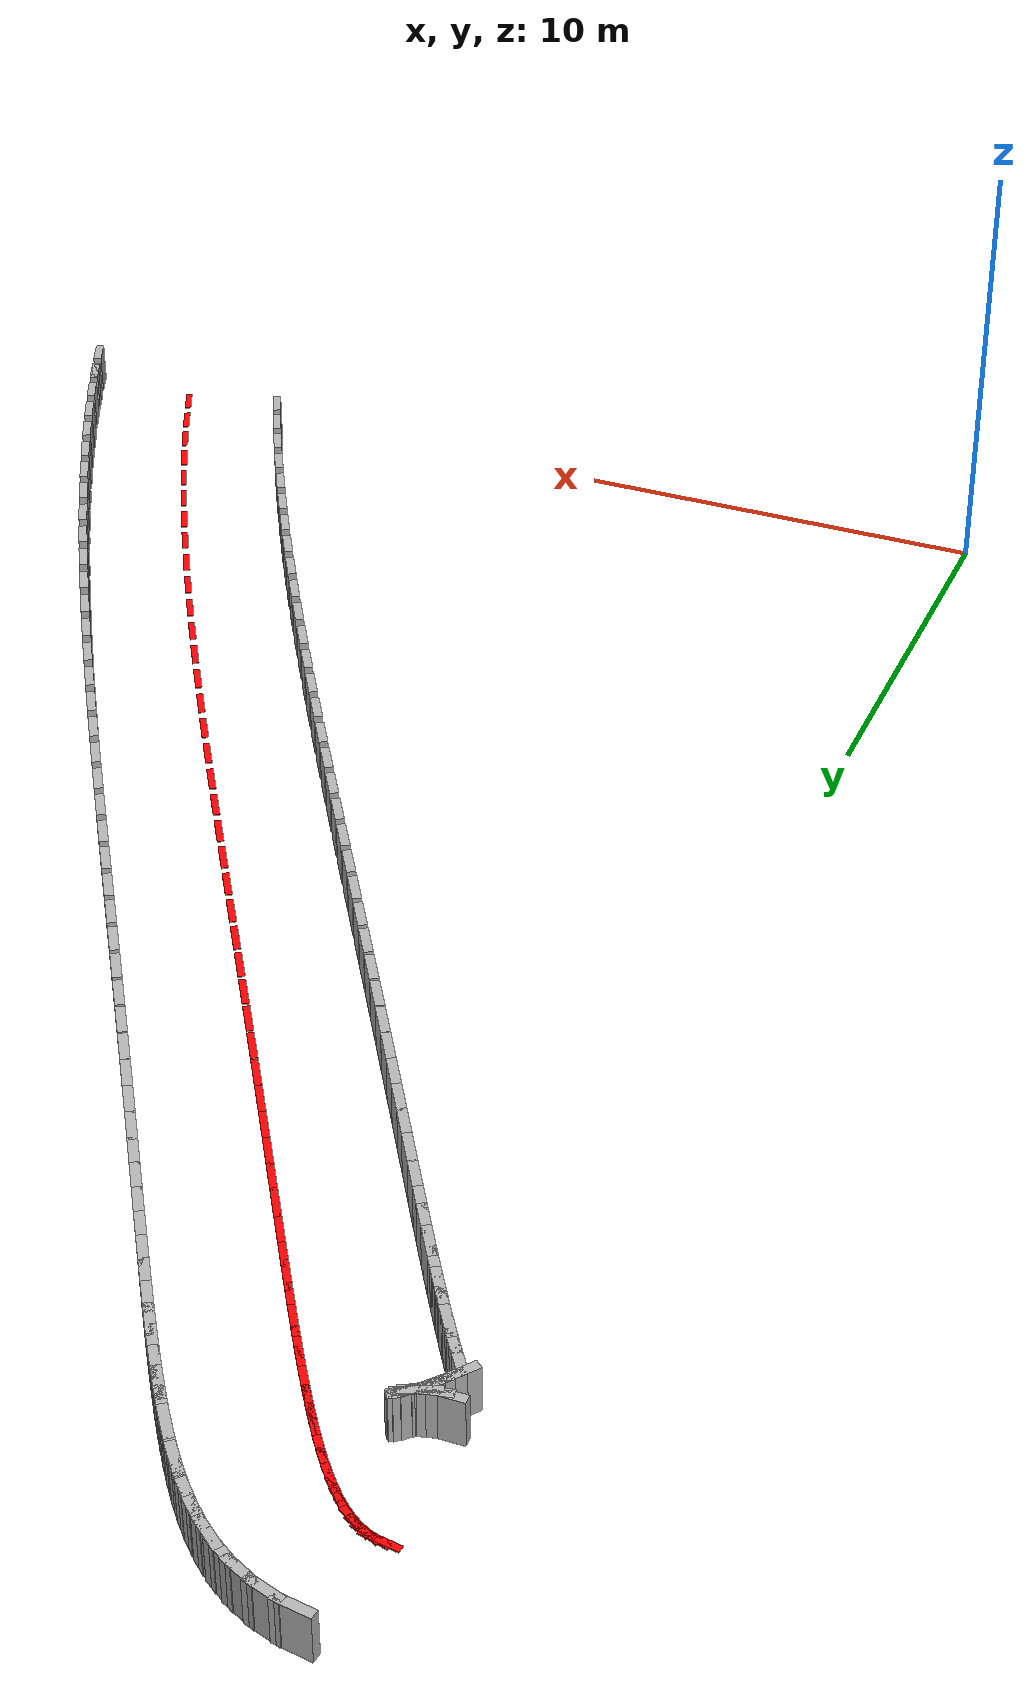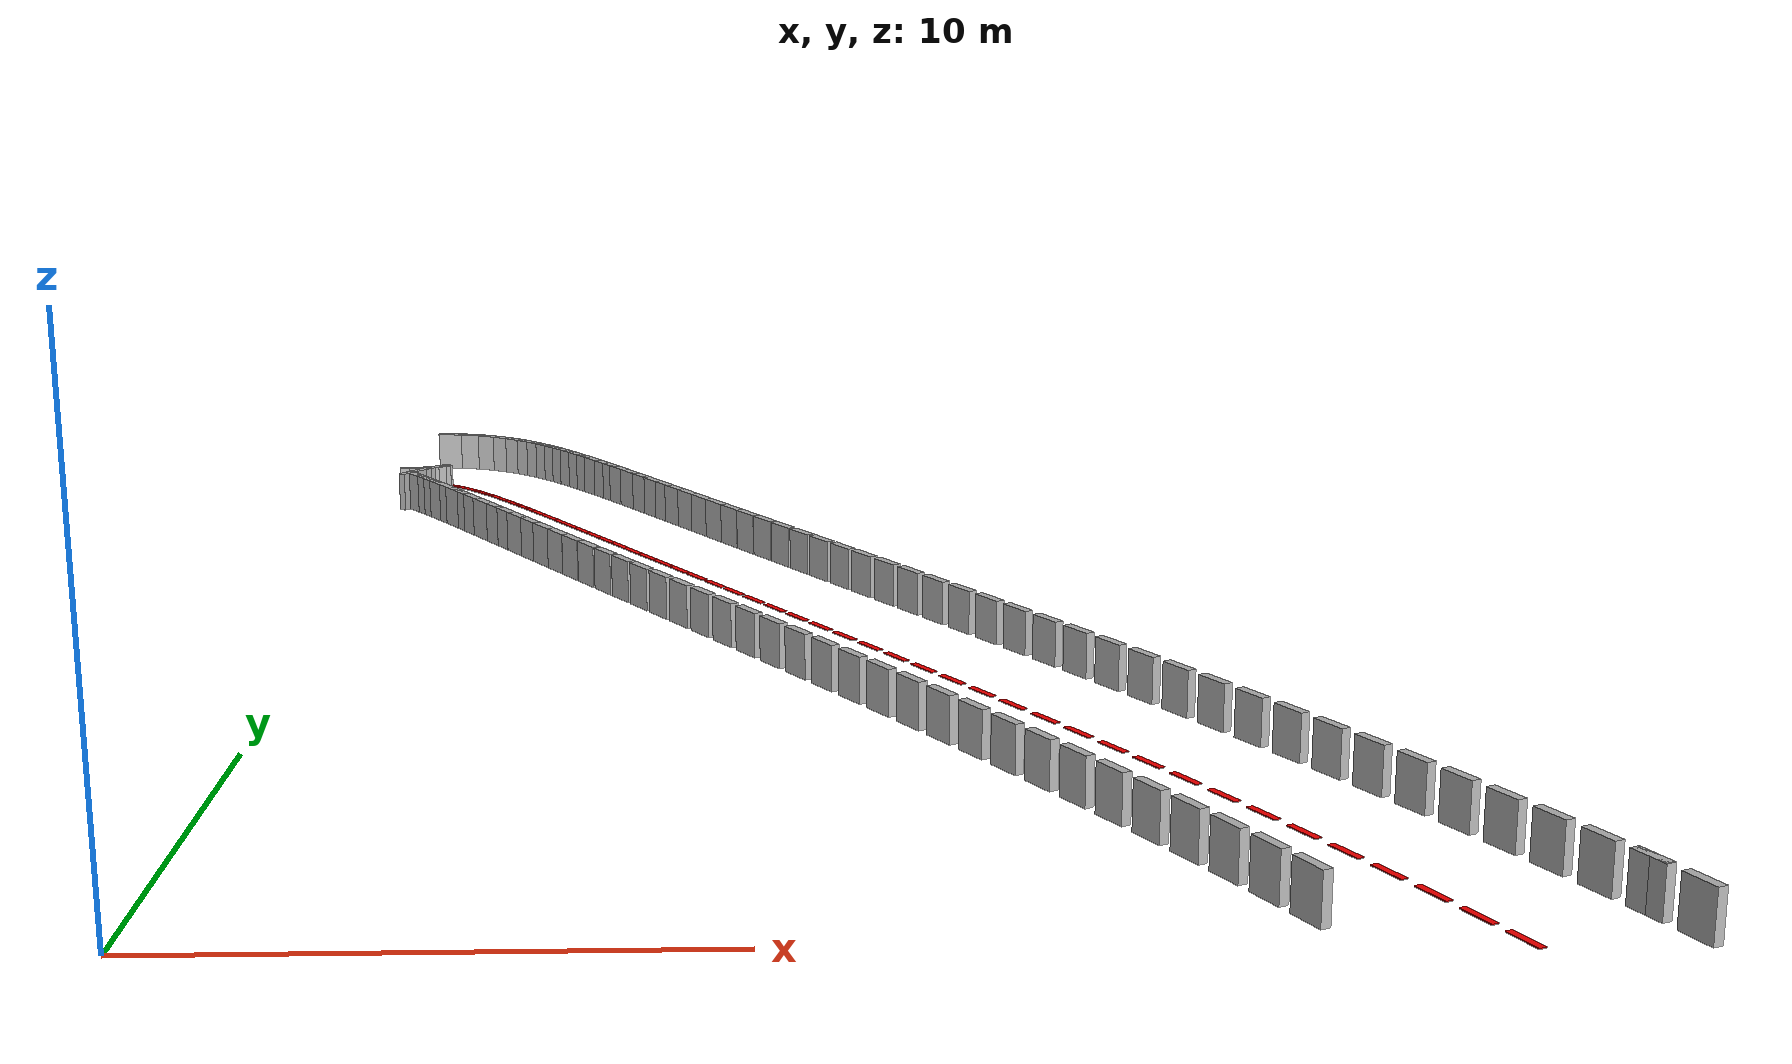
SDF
<sdf version="1.7">
 <model name="track_walls">
  <static>true</static>
  <link name="left_0">
   <pose>24.282 1.022 0.5 0 0 -1.150</pose>
   <collision name="c"><geometry><box><size>0.8 0.2 1.0</size></box></geometry></collision>
   <visual name="v"><geometry><box><size>0.8 0.2 1.0</size></box></geometry></visual>
  </link>
  <link name="left_1">
   <pose>24.739 -0.000 0.5 0 0 -1.158</pose>
   <collision name="c"><geometry><box><size>0.8 0.2 1.0</size></box></geometry></collision>
   <visual name="v"><geometry><box><size>0.8 0.2 1.0</size></box></geometry></visual>
  </link>
  <link name="right_154">
   <pose>0.048 31.980 0.5 0 0 0.918</pose>
   <collision name="c"><geometry><box><size>0.8 0.2 1.0</size></box></geometry></collision>
   <visual name="v"><geometry><box><size>0.8 0.2 1.0</size></box></geometry></visual>
  </link>
  <link name="right_155">
   <pose>0.222 32.201 0.5 0 0 0.890</pose>
   <collision name="c"><geometry><box><size>0.8 0.2 1.0</size></box></geometry></collision>
   <visual name="v"><geometry><box><size>0.8 0.2 1.0</size></box></geometry></visual>
  </link>
  <link name="right_156">
   <pose>0.373 32.382 0.5 0 0 0.854</pose>
   <collision name="c"><geometry><box><size>0.8 0.2 1.0</size></box></geometry></collision>
   <visual name="v"><geometry><box><size>0.8 0.2 1.0</size></box></geometry></visual>
  </link>
  <link name="right_157">
   <pose>0.498 32.520 0.5 0 0 0.809</pose>
   <collision name="c"><geometry><box><size>0.8 0.2 1.0</size></box></geometry></collision>
   <visual name="v"><geometry><box><size>0.8 0.2 1.0</size></box></geometry></visual>
  </link>
  <link name="right_158">
   <pose>0.592 32.613 0.5 0 0 0.752</pose>
   <collision name="c"><geometry><box><size>0.8 0.2 1.0</size></box></geometry></collision>
   <visual name="v"><geometry><box><size>0.8 0.2 1.0</size></box></geometry></visual>
  </link>
  <link name="right_159">
   <pose>0.647 32.662 0.5 0 0 0.681</pose>
   <collision name="c"><geometry><box><size>0.8 0.2 1.0</size></box></geometry></collision>
   <visual name="v"><geometry><box><size>0.8 0.2 1.0</size></box></geometry></visual>
  </link>
  <link name="right_160">
   <pose>0.653 32.667 0.5 0 0 0.593</pose>
   <collision name="c"><geometry><box><size>0.8 0.2 1.0</size></box></geometry></collision>
   <visual name="v"><geometry><box><size>0.8 0.2 1.0</size></box></geometry></visual>
  </link>
  <link name="right_161">
   <pose>0.600 32.636 0.5 0 0 0.485</pose>
   <collision name="c"><geometry><box><size>0.8 0.2 1.0</size></box></geometry></collision>
   <visual name="v"><geometry><box><size>0.8 0.2 1.0</size></box></geometry></visual>
  </link>
  <link name="right_162">
   <pose>0.479 32.583 0.5 0 0 0.355</pose>
   <collision name="c"><geometry><box><size>0.8 0.2 1.0</size></box></geometry></collision>
   <visual name="v"><geometry><box><size>0.8 0.2 1.0</size></box></geometry></visual>
  </link>
  <link name="right_163">
   <pose>0.294 32.530 0.5 0 0 0.205</pose>
   <collision name="c"><geometry><box><size>0.8 0.2 1.0</size></box></geometry></collision>
   <visual name="v"><geometry><box><size>0.8 0.2 1.0</size></box></geometry></visual>
  </link>
  <link name="right_164">
   <pose>0.061 32.501 0.5 0 0 0.042</pose>
   <collision name="c"><geometry><box><size>0.8 0.2 1.0</size></box></geometry></collision>
   <visual name="v"><geometry><box><size>0.8 0.2 1.0</size></box></geometry></visual>
  </link>
  <link name="left_165">
   <pose>0.440 37.473 0.5 0 0 -0.125</pose>
   <collision name="c"><geometry><box><size>0.8 0.2 1.0</size></box></geometry></collision>
   <visual name="v"><geometry><box><size>0.8 0.2 1.0</size></box></geometry></visual>
  </link>
  <link name="center_165">
   <pose>0.129 34.992 0.010 0 0 -0.125</pose>
   <visual name="v">
    <geometry><box><size>0.8 0.15 0.02</size></box></geometry>
    <material><ambient>1 0 0 1</ambient><diffuse>1 0 0 1</diffuse></material>
   </visual>
  </link>
  <link name="left_166">
   <pose>0.998 37.357 0.5 0 0 -0.282</pose>
   <collision name="c"><geometry><box><size>0.8 0.2 1.0</size></box></geometry></collision>
   <visual name="v"><geometry><box><size>0.8 0.2 1.0</size></box></geometry></visual>
  </link>
  <link name="center_166">
   <pose>0.302 34.956 0.010 0 0 -0.282</pose>
   <visual name="v">
    <geometry><box><size>0.8 0.15 0.02</size></box></geometry>
    <material><ambient>1 0 0 1</ambient><diffuse>1 0 0 1</diffuse></material>
   </visual>
  </link>
  <link name="left_167">
   <pose>1.502 37.171 0.5 0 0 -0.422</pose>
   <collision name="c"><geometry><box><size>0.8 0.2 1.0</size></box></geometry></collision>
   <visual name="v"><geometry><box><size>0.8 0.2 1.0</size></box></geometry></visual>
  </link>
  <link name="center_167">
   <pose>0.477 34.891 0.010 0 0 -0.422</pose>
   <visual name="v">
    <geometry><box><size>0.8 0.15 0.02</size></box></geometry>
    <material><ambient>1 0 0 1</ambient><diffuse>1 0 0 1</diffuse></material>
   </visual>
  </link>
  <link name="left_168">
   <pose>1.943 36.940 0.5 0 0 -0.542</pose>
   <collision name="c"><geometry><box><size>0.8 0.2 1.0</size></box></geometry></collision>
   <visual name="v"><geometry><box><size>0.8 0.2 1.0</size></box></geometry></visual>
  </link>
  <link name="center_168">
   <pose>0.654 34.798 0.010 0 0 -0.542</pose>
   <visual name="v">
    <geometry><box><size>0.8 0.15 0.02</size></box></geometry>
    <material><ambient>1 0 0 1</ambient><diffuse>1 0 0 1</diffuse></material>
   </visual>
  </link>
  <link name="left_169">
   <pose>2.327 36.681 0.5 0 0 -0.640</pose>
   <collision name="c"><geometry><box><size>0.8 0.2 1.0</size></box></geometry></collision>
   <visual name="v"><geometry><box><size>0.8 0.2 1.0</size></box></geometry></visual>
  </link>
  <link name="center_169">
   <pose>0.835 34.675 0.010 0 0 -0.640</pose>
   <visual name="v">
    <geometry><box><size>0.8 0.15 0.02</size></box></geometry>
    <material><ambient>1 0 0 1</ambient><diffuse>1 0 0 1</diffuse></material>
   </visual>
  </link>
  <link name="left_170">
   <pose>2.667 36.406 0.5 0 0 -0.719</pose>
   <collision name="c"><geometry><box><size>0.8 0.2 1.0</size></box></geometry></collision>
   <visual name="v"><geometry><box><size>0.8 0.2 1.0</size></box></geometry></visual>
  </link>
  <link name="center_170">
   <pose>1.021 34.525 0.010 0 0 -0.719</pose>
   <visual name="v">
    <geometry><box><size>0.8 0.15 0.02</size></box></geometry>
    <material><ambient>1 0 0 1</ambient><diffuse>1 0 0 1</diffuse></material>
   </visual>
  </link>
  <link name="left_171">
   <pose>2.974 36.119 0.5 0 0 -0.782</pose>
   <collision name="c"><geometry><box><size>0.8 0.2 1.0</size></box></geometry></collision>
   <visual name="v"><geometry><box><size>0.8 0.2 1.0</size></box></geometry></visual>
  </link>
  <link name="center_171">
   <pose>1.212 34.346 0.010 0 0 -0.782</pose>
   <visual name="v">
    <geometry><box><size>0.8 0.15 0.02</size></box></geometry>
    <material><ambient>1 0 0 1</ambient><diffuse>1 0 0 1</diffuse></material>
   </visual>
  </link>
  <link name="left_172">
   <pose>3.259 35.821 0.5 0 0 -0.833</pose>
   <collision name="c"><geometry><box><size>0.8 0.2 1.0</size></box></geometry></collision>
   <visual name="v"><geometry><box><size>0.8 0.2 1.0</size></box></geometry></visual>
  </link>
  <link name="center_172">
   <pose>1.410 34.138 0.010 0 0 -0.833</pose>
   <visual name="v">
    <geometry><box><size>0.8 0.15 0.02</size></box></geometry>
    <material><ambient>1 0 0 1</ambient><diffuse>1 0 0 1</diffuse></material>
   </visual>
  </link>
  <link name="left_173">
   <pose>3.531 35.509 0.5 0 0 -0.873</pose>
   <collision name="c"><geometry><box><size>0.8 0.2 1.0</size></box></geometry></collision>
   <visual name="v"><geometry><box><size>0.8 0.2 1.0</size></box></geometry></visual>
  </link>
  <link name="center_173">
   <pose>1.615 33.903 0.010 0 0 -0.873</pose>
   <visual name="v">
    <geometry><box><size>0.8 0.15 0.02</size></box></geometry>
    <material><ambient>1 0 0 1</ambient><diffuse>1 0 0 1</diffuse></material>
   </visual>
  </link>
  <link name="left_174">
   <pose>3.794 35.184 0.5 0 0 -0.905</pose>
   <collision name="c"><geometry><box><size>0.8 0.2 1.0</size></box></geometry></collision>
   <visual name="v"><geometry><box><size>0.8 0.2 1.0</size></box></geometry></visual>
  </link>
  <link name="center_174">
   <pose>1.828 33.640 0.010 0 0 -0.905</pose>
   <visual name="v">
    <geometry><box><size>0.8 0.15 0.02</size></box></geometry>
    <material><ambient>1 0 0 1</ambient><diffuse>1 0 0 1</diffuse></material>
   </visual>
  </link>
  <link name="left_175">
   <pose>4.055 34.842 0.5 0 0 -0.930</pose>
   <collision name="c"><geometry><box><size>0.8 0.2 1.0</size></box></geometry></collision>
   <visual name="v"><geometry><box><size>0.8 0.2 1.0</size></box></geometry></visual>
  </link>
  <link name="center_175">
   <pose>2.051 33.348 0.010 0 0 -0.930</pose>
   <visual name="v">
    <geometry><box><size>0.8 0.15 0.02</size></box></geometry>
    <material><ambient>1 0 0 1</ambient><diffuse>1 0 0 1</diffuse></material>
   </visual>
  </link>
  <link name="left_176">
   <pose>4.317 34.483 0.5 0 0 -0.951</pose>
   <collision name="c"><geometry><box><size>0.8 0.2 1.0</size></box></geometry></collision>
   <visual name="v"><geometry><box><size>0.8 0.2 1.0</size></box></geometry></visual>
  </link>
  <link name="right_176">
   <pose>0.248 31.577 0.5 0 0 -0.951</pose>
   <collision name="c"><geometry><box><size>0.8 0.2 1.0</size></box></geometry></collision>
   <visual name="v"><geometry><box><size>0.8 0.2 1.0</size></box></geometry></visual>
  </link>
  <link name="center_176">
   <pose>2.282 33.030 0.010 0 0 -0.951</pose>
   <visual name="v">
    <geometry><box><size>0.8 0.15 0.02</size></box></geometry>
    <material><ambient>1 0 0 1</ambient><diffuse>1 0 0 1</diffuse></material>
   </visual>
  </link>
  <link name="left_177">
   <pose>4.582 34.105 0.5 0 0 -0.967</pose>
   <collision name="c"><geometry><box><size>0.8 0.2 1.0</size></box></geometry></collision>
   <visual name="v"><geometry><box><size>0.8 0.2 1.0</size></box></geometry></visual>
  </link>
  <link name="right_177">
   <pose>0.468 31.264 0.5 0 0 -0.967</pose>
   <collision name="c"><geometry><box><size>0.8 0.2 1.0</size></box></geometry></collision>
   <visual name="v"><geometry><box><size>0.8 0.2 1.0</size></box></geometry></visual>
  </link>
  <link name="center_177">
   <pose>2.525 32.684 0.010 0 0 -0.967</pose>
   <visual name="v">
    <geometry><box><size>0.8 0.15 0.02</size></box></geometry>
    <material><ambient>1 0 0 1</ambient><diffuse>1 0 0 1</diffuse></material>
   </visual>
  </link>
  <link name="left_178">
   <pose>4.853 33.706 0.5 0 0 -0.979</pose>
   <collision name="c"><geometry><box><size>0.8 0.2 1.0</size></box></geometry></collision>
   <visual name="v"><geometry><box><size>0.8 0.2 1.0</size></box></geometry></visual>
  </link>
  <link name="right_178">
   <pose>0.704 30.917 0.5 0 0 -0.979</pose>
   <collision name="c"><geometry><box><size>0.8 0.2 1.0</size></box></geometry></collision>
   <visual name="v"><geometry><box><size>0.8 0.2 1.0</size></box></geometry></visual>
  </link>
  <link name="center_178">
   <pose>2.778 32.312 0.010 0 0 -0.979</pose>
   <visual name="v">
    <geometry><box><size>0.8 0.15 0.02</size></box></geometry>
    <material><ambient>1 0 0 1</ambient><diffuse>1 0 0 1</diffuse></material>
   </visual>
  </link>
  <link name="left_179">
   <pose>5.132 33.287 0.5 0 0 -0.989</pose>
   <collision name="c"><geometry><box><size>0.8 0.2 1.0</size></box></geometry></collision>
   <visual name="v"><geometry><box><size>0.8 0.2 1.0</size></box></geometry></visual>
  </link>
  <link name="right_179">
   <pose>0.955 30.538 0.5 0 0 -0.989</pose>
   <collision name="c"><geometry><box><size>0.8 0.2 1.0</size></box></geometry></collision>
   <visual name="v"><geometry><box><size>0.8 0.2 1.0</size></box></geometry></visual>
  </link>
  <link name="center_179">
   <pose>3.044 31.913 0.010 0 0 -0.989</pose>
   <visual name="v">
    <geometry><box><size>0.8 0.15 0.02</size></box></geometry>
    <material><ambient>1 0 0 1</ambient><diffuse>1 0 0 1</diffuse></material>
   </visual>
  </link>
  <link name="left_180">
   <pose>5.420 32.846 0.5 0 0 -0.996</pose>
   <collision name="c"><geometry><box><size>0.8 0.2 1.0</size></box></geometry></collision>
   <visual name="v"><geometry><box><size>0.8 0.2 1.0</size></box></geometry></visual>
  </link>
  <link name="right_180">
   <pose>1.223 30.128 0.5 0 0 -0.996</pose>
   <collision name="c"><geometry><box><size>0.8 0.2 1.0</size></box></geometry></collision>
   <visual name="v"><geometry><box><size>0.8 0.2 1.0</size></box></geometry></visual>
  </link>
  <link name="center_180">
   <pose>3.321 31.487 0.010 0 0 -0.996</pose>
   <visual name="v">
    <geometry><box><size>0.8 0.15 0.02</size></box></geometry>
    <material><ambient>1 0 0 1</ambient><diffuse>1 0 0 1</diffuse></material>
   </visual>
  </link>
  <link name="left_181">
   <pose>5.717 32.383 0.5 0 0 -1.002</pose>
   <collision name="c"><geometry><box><size>0.8 0.2 1.0</size></box></geometry></collision>
   <visual name="v"><geometry><box><size>0.8 0.2 1.0</size></box></geometry></visual>
  </link>
  <link name="right_181">
   <pose>1.505 29.689 0.5 0 0 -1.002</pose>
   <collision name="c"><geometry><box><size>0.8 0.2 1.0</size></box></geometry></collision>
   <visual name="v"><geometry><box><size>0.8 0.2 1.0</size></box></geometry></visual>
  </link>
  <link name="center_181">
   <pose>3.611 31.036 0.010 0 0 -1.002</pose>
   <visual name="v">
    <geometry><box><size>0.8 0.15 0.02</size></box></geometry>
    <material><ambient>1 0 0 1</ambient><diffuse>1 0 0 1</diffuse></material>
   </visual>
  </link>
  <link name="left_182">
   <pose>6.026 31.897 0.5 0 0 -1.006</pose>
   <collision name="c"><geometry><box><size>0.8 0.2 1.0</size></box></geometry></collision>
   <visual name="v"><geometry><box><size>0.8 0.2 1.0</size></box></geometry></visual>
  </link>
  <link name="right_182">
   <pose>1.804 29.220 0.5 0 0 -1.006</pose>
   <collision name="c"><geometry><box><size>0.8 0.2 1.0</size></box></geometry></collision>
   <visual name="v"><geometry><box><size>0.8 0.2 1.0</size></box></geometry></visual>
  </link>
  <link name="center_182">
   <pose>3.915 30.559 0.010 0 0 -1.006</pose>
   <visual name="v">
    <geometry><box><size>0.8 0.15 0.02</size></box></geometry>
    <material><ambient>1 0 0 1</ambient><diffuse>1 0 0 1</diffuse></material>
   </visual>
  </link>
  <link name="left_183">
   <pose>6.347 31.389 0.5 0 0 -1.009</pose>
   <collision name="c"><geometry><box><size>0.8 0.2 1.0</size></box></geometry></collision>
   <visual name="v"><geometry><box><size>0.8 0.2 1.0</size></box></geometry></visual>
  </link>
  <link name="right_183">
   <pose>2.117 28.724 0.5 0 0 -1.009</pose>
   <collision name="c"><geometry><box><size>0.8 0.2 1.0</size></box></geometry></collision>
   <visual name="v"><geometry><box><size>0.8 0.2 1.0</size></box></geometry></visual>
  </link>
  <link name="center_183">
   <pose>4.232 30.057 0.010 0 0 -1.009</pose>
   <visual name="v">
    <geometry><box><size>0.8 0.15 0.02</size></box></geometry>
    <material><ambient>1 0 0 1</ambient><diffuse>1 0 0 1</diffuse></material>
   </visual>
  </link>
  <link name="left_184">
   <pose>6.681 30.858 0.5 0 0 -1.011</pose>
   <collision name="c"><geometry><box><size>0.8 0.2 1.0</size></box></geometry></collision>
   <visual name="v"><geometry><box><size>0.8 0.2 1.0</size></box></geometry></visual>
  </link>
  <link name="right_184">
   <pose>2.445 28.201 0.5 0 0 -1.011</pose>
   <collision name="c"><geometry><box><size>0.8 0.2 1.0</size></box></geometry></collision>
   <visual name="v"><geometry><box><size>0.8 0.2 1.0</size></box></geometry></visual>
  </link>
  <link name="center_184">
   <pose>4.563 29.530 0.010 0 0 -1.011</pose>
   <visual name="v">
    <geometry><box><size>0.8 0.15 0.02</size></box></geometry>
    <material><ambient>1 0 0 1</ambient><diffuse>1 0 0 1</diffuse></material>
   </visual>
  </link>
  <link name="left_185">
   <pose>7.028 30.305 0.5 0 0 -1.012</pose>
   <collision name="c"><geometry><box><size>0.8 0.2 1.0</size></box></geometry></collision>
   <visual name="v"><geometry><box><size>0.8 0.2 1.0</size></box></geometry></visual>
  </link>
  <link name="right_185">
   <pose>2.789 27.653 0.5 0 0 -1.012</pose>
   <collision name="c"><geometry><box><size>0.8 0.2 1.0</size></box></geometry></collision>
   <visual name="v"><geometry><box><size>0.8 0.2 1.0</size></box></geometry></visual>
  </link>
  <link name="center_185">
   <pose>4.908 28.979 0.010 0 0 -1.012</pose>
   <visual name="v">
    <geometry><box><size>0.8 0.15 0.02</size></box></geometry>
    <material><ambient>1 0 0 1</ambient><diffuse>1 0 0 1</diffuse></material>
   </visual>
  </link>
  <link name="left_186">
   <pose>7.388 29.729 0.5 0 0 -1.012</pose>
   <collision name="c"><geometry><box><size>0.8 0.2 1.0</size></box></geometry></collision>
   <visual name="v"><geometry><box><size>0.8 0.2 1.0</size></box></geometry></visual>
  </link>
  <link name="right_186">
   <pose>3.148 27.079 0.5 0 0 -1.012</pose>
   <collision name="c"><geometry><box><size>0.8 0.2 1.0</size></box></geometry></collision>
   <visual name="v"><geometry><box><size>0.8 0.2 1.0</size></box></geometry></visual>
  </link>
  <link name="center_186">
   <pose>5.268 28.404 0.010 0 0 -1.012</pose>
   <visual name="v">
    <geometry><box><size>0.8 0.15 0.02</size></box></geometry>
    <material><ambient>1 0 0 1</ambient><diffuse>1 0 0 1</diffuse></material>
   </visual>
  </link>
  <link name="left_187">
   <pose>7.762 29.130 0.5 0 0 -1.012</pose>
   <collision name="c"><geometry><box><size>0.8 0.2 1.0</size></box></geometry></collision>
   <visual name="v"><geometry><box><size>0.8 0.2 1.0</size></box></geometry></visual>
  </link>
  <link name="right_187">
   <pose>3.521 26.481 0.5 0 0 -1.012</pose>
   <collision name="c"><geometry><box><size>0.8 0.2 1.0</size></box></geometry></collision>
   <visual name="v"><geometry><box><size>0.8 0.2 1.0</size></box></geometry></visual>
  </link>
  <link name="center_187">
   <pose>5.642 27.806 0.010 0 0 -1.012</pose>
   <visual name="v">
    <geometry><box><size>0.8 0.15 0.02</size></box></geometry>
    <material><ambient>1 0 0 1</ambient><diffuse>1 0 0 1</diffuse></material>
   </visual>
  </link>
  <link name="left_188">
   <pose>8.149 28.510 0.5 0 0 -1.012</pose>
   <collision name="c"><geometry><box><size>0.8 0.2 1.0</size></box></geometry></collision>
   <visual name="v"><geometry><box><size>0.8 0.2 1.0</size></box></geometry></visual>
  </link>
  <link name="right_188">
   <pose>3.910 25.859 0.5 0 0 -1.012</pose>
   <collision name="c"><geometry><box><size>0.8 0.2 1.0</size></box></geometry></collision>
   <visual name="v"><geometry><box><size>0.8 0.2 1.0</size></box></geometry></visual>
  </link>
  <link name="center_188">
   <pose>6.030 27.184 0.010 0 0 -1.012</pose>
   <visual name="v">
    <geometry><box><size>0.8 0.15 0.02</size></box></geometry>
    <material><ambient>1 0 0 1</ambient><diffuse>1 0 0 1</diffuse></material>
   </visual>
  </link>
  <link name="left_189">
   <pose>8.551 27.867 0.5 0 0 -1.011</pose>
   <collision name="c"><geometry><box><size>0.8 0.2 1.0</size></box></geometry></collision>
   <visual name="v"><geometry><box><size>0.8 0.2 1.0</size></box></geometry></visual>
  </link>
  <link name="right_189">
   <pose>4.313 25.214 0.5 0 0 -1.011</pose>
   <collision name="c"><geometry><box><size>0.8 0.2 1.0</size></box></geometry></collision>
   <visual name="v"><geometry><box><size>0.8 0.2 1.0</size></box></geometry></visual>
  </link>
  <link name="center_189">
   <pose>6.432 26.541 0.010 0 0 -1.011</pose>
   <visual name="v">
    <geometry><box><size>0.8 0.15 0.02</size></box></geometry>
    <material><ambient>1 0 0 1</ambient><diffuse>1 0 0 1</diffuse></material>
   </visual>
  </link>
  <link name="left_190">
   <pose>8.967 27.203 0.5 0 0 -1.011</pose>
   <collision name="c"><geometry><box><size>0.8 0.2 1.0</size></box></geometry></collision>
   <visual name="v"><geometry><box><size>0.8 0.2 1.0</size></box></geometry></visual>
  </link>
  <link name="right_190">
   <pose>4.731 24.547 0.5 0 0 -1.011</pose>
   <collision name="c"><geometry><box><size>0.8 0.2 1.0</size></box></geometry></collision>
   <visual name="v"><geometry><box><size>0.8 0.2 1.0</size></box></geometry></visual>
  </link>
  <link name="center_190">
   <pose>6.849 25.875 0.010 0 0 -1.011</pose>
   <visual name="v">
    <geometry><box><size>0.8 0.15 0.02</size></box></geometry>
    <material><ambient>1 0 0 1</ambient><diffuse>1 0 0 1</diffuse></material>
   </visual>
  </link>
  <link name="left_191">
   <pose>9.397 26.518 0.5 0 0 -1.010</pose>
   <collision name="c"><geometry><box><size>0.8 0.2 1.0</size></box></geometry></collision>
   <visual name="v"><geometry><box><size>0.8 0.2 1.0</size></box></geometry></visual>
  </link>
  <link name="right_191">
   <pose>5.163 23.859 0.5 0 0 -1.010</pose>
   <collision name="c"><geometry><box><size>0.8 0.2 1.0</size></box></geometry></collision>
   <visual name="v"><geometry><box><size>0.8 0.2 1.0</size></box></geometry></visual>
  </link>
  <link name="center_191">
   <pose>7.280 25.189 0.010 0 0 -1.010</pose>
   <visual name="v">
    <geometry><box><size>0.8 0.15 0.02</size></box></geometry>
    <material><ambient>1 0 0 1</ambient><diffuse>1 0 0 1</diffuse></material>
   </visual>
  </link>
  <link name="left_192">
   <pose>9.841 25.812 0.5 0 0 -1.009</pose>
   <collision name="c"><geometry><box><size>0.8 0.2 1.0</size></box></geometry></collision>
   <visual name="v"><geometry><box><size>0.8 0.2 1.0</size></box></geometry></visual>
  </link>
  <link name="right_192">
   <pose>5.608 23.150 0.5 0 0 -1.009</pose>
   <collision name="c"><geometry><box><size>0.8 0.2 1.0</size></box></geometry></collision>
   <visual name="v"><geometry><box><size>0.8 0.2 1.0</size></box></geometry></visual>
  </link>
  <link name="center_192">
   <pose>7.725 24.481 0.010 0 0 -1.009</pose>
   <visual name="v">
    <geometry><box><size>0.8 0.15 0.02</size></box></geometry>
    <material><ambient>1 0 0 1</ambient><diffuse>1 0 0 1</diffuse></material>
   </visual>
  </link>
  <link name="left_193">
   <pose>10.298 25.086 0.5 0 0 -1.009</pose>
   <collision name="c"><geometry><box><size>0.8 0.2 1.0</size></box></geometry></collision>
   <visual name="v"><geometry><box><size>0.8 0.2 1.0</size></box></geometry></visual>
  </link>
  <link name="right_193">
   <pose>6.067 22.421 0.5 0 0 -1.009</pose>
   <collision name="c"><geometry><box><size>0.8 0.2 1.0</size></box></geometry></collision>
   <visual name="v"><geometry><box><size>0.8 0.2 1.0</size></box></geometry></visual>
  </link>
  <link name="center_193">
   <pose>8.183 23.753 0.010 0 0 -1.009</pose>
   <visual name="v">
    <geometry><box><size>0.8 0.15 0.02</size></box></geometry>
    <material><ambient>1 0 0 1</ambient><diffuse>1 0 0 1</diffuse></material>
   </visual>
  </link>
  <link name="left_194">
   <pose>10.768 24.340 0.5 0 0 -1.008</pose>
   <collision name="c"><geometry><box><size>0.8 0.2 1.0</size></box></geometry></collision>
   <visual name="v"><geometry><box><size>0.8 0.2 1.0</size></box></geometry></visual>
  </link>
  <link name="right_194">
   <pose>6.539 21.673 0.5 0 0 -1.008</pose>
   <collision name="c"><geometry><box><size>0.8 0.2 1.0</size></box></geometry></collision>
   <visual name="v"><geometry><box><size>0.8 0.2 1.0</size></box></geometry></visual>
  </link>
  <link name="center_194">
   <pose>8.654 23.006 0.010 0 0 -1.008</pose>
   <visual name="v">
    <geometry><box><size>0.8 0.15 0.02</size></box></geometry>
    <material><ambient>1 0 0 1</ambient><diffuse>1 0 0 1</diffuse></material>
   </visual>
  </link>
  <link name="left_195">
   <pose>11.251 23.574 0.5 0 0 -1.008</pose>
   <collision name="c"><geometry><box><size>0.8 0.2 1.0</size></box></geometry></collision>
   <visual name="v"><geometry><box><size>0.8 0.2 1.0</size></box></geometry></visual>
  </link>
  <link name="right_195">
   <pose>7.023 20.906 0.5 0 0 -1.008</pose>
   <collision name="c"><geometry><box><size>0.8 0.2 1.0</size></box></geometry></collision>
   <visual name="v"><geometry><box><size>0.8 0.2 1.0</size></box></geometry></visual>
  </link>
  <link name="center_195">
   <pose>9.137 22.240 0.010 0 0 -1.008</pose>
   <visual name="v">
    <geometry><box><size>0.8 0.15 0.02</size></box></geometry>
    <material><ambient>1 0 0 1</ambient><diffuse>1 0 0 1</diffuse></material>
   </visual>
  </link>
  <link name="left_196">
   <pose>11.746 22.790 0.5 0 0 -1.008</pose>
   <collision name="c"><geometry><box><size>0.8 0.2 1.0</size></box></geometry></collision>
   <visual name="v"><geometry><box><size>0.8 0.2 1.0</size></box></geometry></visual>
  </link>
  <link name="right_196">
   <pose>7.518 20.121 0.5 0 0 -1.008</pose>
   <collision name="c"><geometry><box><size>0.8 0.2 1.0</size></box></geometry></collision>
   <visual name="v"><geometry><box><size>0.8 0.2 1.0</size></box></geometry></visual>
  </link>
  <link name="center_196">
   <pose>9.632 21.456 0.010 0 0 -1.008</pose>
   <visual name="v">
    <geometry><box><size>0.8 0.15 0.02</size></box></geometry>
    <material><ambient>1 0 0 1</ambient><diffuse>1 0 0 1</diffuse></material>
   </visual>
  </link>
  <link name="left_197">
   <pose>12.253 21.988 0.5 0 0 -1.008</pose>
   <collision name="c"><geometry><box><size>0.8 0.2 1.0</size></box></geometry></collision>
   <visual name="v"><geometry><box><size>0.8 0.2 1.0</size></box></geometry></visual>
  </link>
  <link name="right_197">
   <pose>8.025 19.319 0.5 0 0 -1.008</pose>
   <collision name="c"><geometry><box><size>0.8 0.2 1.0</size></box></geometry></collision>
   <visual name="v"><geometry><box><size>0.8 0.2 1.0</size></box></geometry></visual>
  </link>
  <link name="center_197">
   <pose>10.139 20.654 0.010 0 0 -1.008</pose>
   <visual name="v">
    <geometry><box><size>0.8 0.15 0.02</size></box></geometry>
    <material><ambient>1 0 0 1</ambient><diffuse>1 0 0 1</diffuse></material>
   </visual>
  </link>
  <link name="left_198">
   <pose>12.770 21.168 0.5 0 0 -1.008</pose>
   <collision name="c"><geometry><box><size>0.8 0.2 1.0</size></box></geometry></collision>
   <visual name="v"><geometry><box><size>0.8 0.2 1.0</size></box></geometry></visual>
  </link>
  <link name="right_198">
   <pose>8.541 18.501 0.5 0 0 -1.008</pose>
   <collision name="c"><geometry><box><size>0.8 0.2 1.0</size></box></geometry></collision>
   <visual name="v"><geometry><box><size>0.8 0.2 1.0</size></box></geometry></visual>
  </link>
  <link name="center_198">
   <pose>10.656 19.835 0.010 0 0 -1.008</pose>
   <visual name="v">
    <geometry><box><size>0.8 0.15 0.02</size></box></geometry>
    <material><ambient>1 0 0 1</ambient><diffuse>1 0 0 1</diffuse></material>
   </visual>
  </link>
  <link name="left_199">
   <pose>13.298 20.331 0.5 0 0 -1.009</pose>
   <collision name="c"><geometry><box><size>0.8 0.2 1.0</size></box></geometry></collision>
   <visual name="v"><geometry><box><size>0.8 0.2 1.0</size></box></geometry></visual>
  </link>
  <link name="right_199">
   <pose>9.067 17.667 0.5 0 0 -1.009</pose>
   <collision name="c"><geometry><box><size>0.8 0.2 1.0</size></box></geometry></collision>
   <visual name="v"><geometry><box><size>0.8 0.2 1.0</size></box></geometry></visual>
  </link>
  <link name="center_199">
   <pose>11.182 18.999 0.010 0 0 -1.009</pose>
   <visual name="v">
    <geometry><box><size>0.8 0.15 0.02</size></box></geometry>
    <material><ambient>1 0 0 1</ambient><diffuse>1 0 0 1</diffuse></material>
   </visual>
  </link>
  <link name="left_200">
   <pose>13.835 19.478 0.5 0 0 -1.010</pose>
   <collision name="c"><geometry><box><size>0.8 0.2 1.0</size></box></geometry></collision>
   <visual name="v"><geometry><box><size>0.8 0.2 1.0</size></box></geometry></visual>
  </link>
  <link name="right_200">
   <pose>9.601 16.818 0.5 0 0 -1.010</pose>
   <collision name="c"><geometry><box><size>0.8 0.2 1.0</size></box></geometry></collision>
   <visual name="v"><geometry><box><size>0.8 0.2 1.0</size></box></geometry></visual>
  </link>
  <link name="center_200">
   <pose>11.718 18.148 0.010 0 0 -1.010</pose>
   <visual name="v">
    <geometry><box><size>0.8 0.15 0.02</size></box></geometry>
    <material><ambient>1 0 0 1</ambient><diffuse>1 0 0 1</diffuse></material>
   </visual>
  </link>
  <link name="left_201">
   <pose>14.380 18.609 0.5 0 0 -1.011</pose>
   <collision name="c"><geometry><box><size>0.8 0.2 1.0</size></box></geometry></collision>
   <visual name="v"><geometry><box><size>0.8 0.2 1.0</size></box></geometry></visual>
  </link>
  <link name="right_201">
   <pose>10.142 15.955 0.5 0 0 -1.011</pose>
   <collision name="c"><geometry><box><size>0.8 0.2 1.0</size></box></geometry></collision>
   <visual name="v"><geometry><box><size>0.8 0.2 1.0</size></box></geometry></visual>
  </link>
  <link name="center_201">
   <pose>12.261 17.282 0.010 0 0 -1.011</pose>
   <visual name="v">
    <geometry><box><size>0.8 0.15 0.02</size></box></geometry>
    <material><ambient>1 0 0 1</ambient><diffuse>1 0 0 1</diffuse></material>
   </visual>
  </link>
  <link name="left_202">
   <pose>14.932 17.725 0.5 0 0 -1.013</pose>
   <collision name="c"><geometry><box><size>0.8 0.2 1.0</size></box></geometry></collision>
   <visual name="v"><geometry><box><size>0.8 0.2 1.0</size></box></geometry></visual>
  </link>
  <link name="right_202">
   <pose>10.690 15.079 0.5 0 0 -1.013</pose>
   <collision name="c"><geometry><box><size>0.8 0.2 1.0</size></box></geometry></collision>
   <visual name="v"><geometry><box><size>0.8 0.2 1.0</size></box></geometry></visual>
  </link>
  <link name="center_202">
   <pose>12.811 16.402 0.010 0 0 -1.013</pose>
   <visual name="v">
    <geometry><box><size>0.8 0.15 0.02</size></box></geometry>
    <material><ambient>1 0 0 1</ambient><diffuse>1 0 0 1</diffuse></material>
   </visual>
  </link>
  <link name="left_203">
   <pose>15.491 16.826 0.5 0 0 -1.016</pose>
   <collision name="c"><geometry><box><size>0.8 0.2 1.0</size></box></geometry></collision>
   <visual name="v"><geometry><box><size>0.8 0.2 1.0</size></box></geometry></visual>
  </link>
  <link name="right_203">
   <pose>11.242 14.191 0.5 0 0 -1.016</pose>
   <collision name="c"><geometry><box><size>0.8 0.2 1.0</size></box></geometry></collision>
   <visual name="v"><geometry><box><size>0.8 0.2 1.0</size></box></geometry></visual>
  </link>
  <link name="center_203">
   <pose>13.367 15.508 0.010 0 0 -1.016</pose>
   <visual name="v">
    <geometry><box><size>0.8 0.15 0.02</size></box></geometry>
    <material><ambient>1 0 0 1</ambient><diffuse>1 0 0 1</diffuse></material>
   </visual>
  </link>
  <link name="left_204">
   <pose>16.056 15.913 0.5 0 0 -1.018</pose>
   <collision name="c"><geometry><box><size>0.8 0.2 1.0</size></box></geometry></collision>
   <visual name="v"><geometry><box><size>0.8 0.2 1.0</size></box></geometry></visual>
  </link>
  <link name="right_204">
   <pose>11.799 13.290 0.5 0 0 -1.018</pose>
   <collision name="c"><geometry><box><size>0.8 0.2 1.0</size></box></geometry></collision>
   <visual name="v"><geometry><box><size>0.8 0.2 1.0</size></box></geometry></visual>
  </link>
  <link name="center_204">
   <pose>13.928 14.602 0.010 0 0 -1.018</pose>
   <visual name="v">
    <geometry><box><size>0.8 0.15 0.02</size></box></geometry>
    <material><ambient>1 0 0 1</ambient><diffuse>1 0 0 1</diffuse></material>
   </visual>
  </link>
  <link name="left_205">
   <pose>16.624 14.988 0.5 0 0 -1.022</pose>
   <collision name="c"><geometry><box><size>0.8 0.2 1.0</size></box></geometry></collision>
   <visual name="v"><geometry><box><size>0.8 0.2 1.0</size></box></geometry></visual>
  </link>
  <link name="right_205">
   <pose>12.359 12.379 0.5 0 0 -1.022</pose>
   <collision name="c"><geometry><box><size>0.8 0.2 1.0</size></box></geometry></collision>
   <visual name="v"><geometry><box><size>0.8 0.2 1.0</size></box></geometry></visual>
  </link>
  <link name="center_205">
   <pose>14.492 13.683 0.010 0 0 -1.022</pose>
   <visual name="v">
    <geometry><box><size>0.8 0.15 0.02</size></box></geometry>
    <material><ambient>1 0 0 1</ambient><diffuse>1 0 0 1</diffuse></material>
   </visual>
  </link>
  <link name="left_206">
   <pose>17.196 14.050 0.5 0 0 -1.026</pose>
   <collision name="c"><geometry><box><size>0.8 0.2 1.0</size></box></geometry></collision>
   <visual name="v"><geometry><box><size>0.8 0.2 1.0</size></box></geometry></visual>
  </link>
  <link name="right_206">
   <pose>12.920 11.457 0.5 0 0 -1.026</pose>
   <collision name="c"><geometry><box><size>0.8 0.2 1.0</size></box></geometry></collision>
   <visual name="v"><geometry><box><size>0.8 0.2 1.0</size></box></geometry></visual>
  </link>
  <link name="center_206">
   <pose>15.058 12.754 0.010 0 0 -1.026</pose>
   <visual name="v">
    <geometry><box><size>0.8 0.15 0.02</size></box></geometry>
    <material><ambient>1 0 0 1</ambient><diffuse>1 0 0 1</diffuse></material>
   </visual>
  </link>
  <link name="left_207">
   <pose>17.769 13.100 0.5 0 0 -1.030</pose>
   <collision name="c"><geometry><box><size>0.8 0.2 1.0</size></box></geometry></collision>
   <visual name="v"><geometry><box><size>0.8 0.2 1.0</size></box></geometry></visual>
  </link>
  <link name="right_207">
   <pose>13.482 10.527 0.5 0 0 -1.030</pose>
   <collision name="c"><geometry><box><size>0.8 0.2 1.0</size></box></geometry></collision>
   <visual name="v"><geometry><box><size>0.8 0.2 1.0</size></box></geometry></visual>
  </link>
  <link name="center_207">
   <pose>15.626 11.813 0.010 0 0 -1.030</pose>
   <visual name="v">
    <geometry><box><size>0.8 0.15 0.02</size></box></geometry>
    <material><ambient>1 0 0 1</ambient><diffuse>1 0 0 1</diffuse></material>
   </visual>
  </link>
  <link name="left_208">
   <pose>18.343 12.139 0.5 0 0 -1.035</pose>
   <collision name="c"><geometry><box><size>0.8 0.2 1.0</size></box></geometry></collision>
   <visual name="v"><geometry><box><size>0.8 0.2 1.0</size></box></geometry></visual>
  </link>
  <link name="right_208">
   <pose>14.043 9.588 0.5 0 0 -1.035</pose>
   <collision name="c"><geometry><box><size>0.8 0.2 1.0</size></box></geometry></collision>
   <visual name="v"><geometry><box><size>0.8 0.2 1.0</size></box></geometry></visual>
  </link>
  <link name="center_208">
   <pose>16.193 10.863 0.010 0 0 -1.035</pose>
   <visual name="v">
    <geometry><box><size>0.8 0.15 0.02</size></box></geometry>
    <material><ambient>1 0 0 1</ambient><diffuse>1 0 0 1</diffuse></material>
   </visual>
  </link>
  <link name="left_209">
   <pose>18.915 11.168 0.5 0 0 -1.041</pose>
   <collision name="c"><geometry><box><size>0.8 0.2 1.0</size></box></geometry></collision>
   <visual name="v"><geometry><box><size>0.8 0.2 1.0</size></box></geometry></visual>
  </link>
  <link name="right_209">
   <pose>14.601 8.641 0.5 0 0 -1.041</pose>
   <collision name="c"><geometry><box><size>0.8 0.2 1.0</size></box></geometry></collision>
   <visual name="v"><geometry><box><size>0.8 0.2 1.0</size></box></geometry></visual>
  </link>
  <link name="center_209">
   <pose>16.758 9.904 0.010 0 0 -1.041</pose>
   <visual name="v">
    <geometry><box><size>0.8 0.15 0.02</size></box></geometry>
    <material><ambient>1 0 0 1</ambient><diffuse>1 0 0 1</diffuse></material>
   </visual>
  </link>
  <link name="left_210">
   <pose>19.486 10.187 0.5 0 0 -1.047</pose>
   <collision name="c"><geometry><box><size>0.8 0.2 1.0</size></box></geometry></collision>
   <visual name="v"><geometry><box><size>0.8 0.2 1.0</size></box></geometry></visual>
  </link>
  <link name="right_210">
   <pose>15.155 7.688 0.5 0 0 -1.047</pose>
   <collision name="c"><geometry><box><size>0.8 0.2 1.0</size></box></geometry></collision>
   <visual name="v"><geometry><box><size>0.8 0.2 1.0</size></box></geometry></visual>
  </link>
  <link name="center_210">
   <pose>17.320 8.937 0.010 0 0 -1.047</pose>
   <visual name="v">
    <geometry><box><size>0.8 0.15 0.02</size></box></geometry>
    <material><ambient>1 0 0 1</ambient><diffuse>1 0 0 1</diffuse></material>
   </visual>
  </link>
  <link name="left_211">
   <pose>20.053 9.197 0.5 0 0 -1.055</pose>
   <collision name="c"><geometry><box><size>0.8 0.2 1.0</size></box></geometry></collision>
   <visual name="v"><geometry><box><size>0.8 0.2 1.0</size></box></geometry></visual>
  </link>
  <link name="right_211">
   <pose>15.704 6.729 0.5 0 0 -1.055</pose>
   <collision name="c"><geometry><box><size>0.8 0.2 1.0</size></box></geometry></collision>
   <visual name="v"><geometry><box><size>0.8 0.2 1.0</size></box></geometry></visual>
  </link>
  <link name="center_211">
   <pose>17.878 7.963 0.010 0 0 -1.055</pose>
   <visual name="v">
    <geometry><box><size>0.8 0.15 0.02</size></box></geometry>
    <material><ambient>1 0 0 1</ambient><diffuse>1 0 0 1</diffuse></material>
   </visual>
  </link>
  <link name="left_212">
   <pose>20.614 8.199 0.5 0 0 -1.062</pose>
   <collision name="c"><geometry><box><size>0.8 0.2 1.0</size></box></geometry></collision>
   <visual name="v"><geometry><box><size>0.8 0.2 1.0</size></box></geometry></visual>
  </link>
  <link name="right_212">
   <pose>16.246 5.765 0.5 0 0 -1.062</pose>
   <collision name="c"><geometry><box><size>0.8 0.2 1.0</size></box></geometry></collision>
   <visual name="v"><geometry><box><size>0.8 0.2 1.0</size></box></geometry></visual>
  </link>
  <link name="center_212">
   <pose>18.430 6.982 0.010 0 0 -1.062</pose>
   <visual name="v">
    <geometry><box><size>0.8 0.15 0.02</size></box></geometry>
    <material><ambient>1 0 0 1</ambient><diffuse>1 0 0 1</diffuse></material>
   </visual>
  </link>
  <link name="left_213">
   <pose>21.169 7.193 0.5 0 0 -1.071</pose>
   <collision name="c"><geometry><box><size>0.8 0.2 1.0</size></box></geometry></collision>
   <visual name="v"><geometry><box><size>0.8 0.2 1.0</size></box></geometry></visual>
  </link>
  <link name="right_213">
   <pose>16.780 4.797 0.5 0 0 -1.071</pose>
   <collision name="c"><geometry><box><size>0.8 0.2 1.0</size></box></geometry></collision>
   <visual name="v"><geometry><box><size>0.8 0.2 1.0</size></box></geometry></visual>
  </link>
  <link name="center_213">
   <pose>18.975 5.995 0.010 0 0 -1.071</pose>
   <visual name="v">
    <geometry><box><size>0.8 0.15 0.02</size></box></geometry>
    <material><ambient>1 0 0 1</ambient><diffuse>1 0 0 1</diffuse></material>
   </visual>
  </link>
  <link name="left_214">
   <pose>21.716 6.181 0.5 0 0 -1.081</pose>
   <collision name="c"><geometry><box><size>0.8 0.2 1.0</size></box></geometry></collision>
   <visual name="v"><geometry><box><size>0.8 0.2 1.0</size></box></geometry></visual>
  </link>
  <link name="right_214">
   <pose>17.305 3.827 0.5 0 0 -1.081</pose>
   <collision name="c"><geometry><box><size>0.8 0.2 1.0</size></box></geometry></collision>
   <visual name="v"><geometry><box><size>0.8 0.2 1.0</size></box></geometry></visual>
  </link>
  <link name="center_214">
   <pose>19.510 5.004 0.010 0 0 -1.081</pose>
   <visual name="v">
    <geometry><box><size>0.8 0.15 0.02</size></box></geometry>
    <material><ambient>1 0 0 1</ambient><diffuse>1 0 0 1</diffuse></material>
   </visual>
  </link>
  <link name="left_215">
   <pose>22.253 5.162 0.5 0 0 -1.091</pose>
   <collision name="c"><geometry><box><size>0.8 0.2 1.0</size></box></geometry></collision>
   <visual name="v"><geometry><box><size>0.8 0.2 1.0</size></box></geometry></visual>
  </link>
  <link name="right_215">
   <pose>17.817 2.854 0.5 0 0 -1.091</pose>
   <collision name="c"><geometry><box><size>0.8 0.2 1.0</size></box></geometry></collision>
   <visual name="v"><geometry><box><size>0.8 0.2 1.0</size></box></geometry></visual>
  </link>
  <link name="center_215">
   <pose>20.035 4.008 0.010 0 0 -1.091</pose>
   <visual name="v">
    <geometry><box><size>0.8 0.15 0.02</size></box></geometry>
    <material><ambient>1 0 0 1</ambient><diffuse>1 0 0 1</diffuse></material>
   </visual>
  </link>
  <link name="left_216">
   <pose>22.779 4.138 0.5 0 0 -1.102</pose>
   <collision name="c"><geometry><box><size>0.8 0.2 1.0</size></box></geometry></collision>
   <visual name="v"><geometry><box><size>0.8 0.2 1.0</size></box></geometry></visual>
  </link>
  <link name="right_216">
   <pose>18.318 1.880 0.5 0 0 -1.102</pose>
   <collision name="c"><geometry><box><size>0.8 0.2 1.0</size></box></geometry></collision>
   <visual name="v"><geometry><box><size>0.8 0.2 1.0</size></box></geometry></visual>
  </link>
  <link name="center_216">
   <pose>20.548 3.009 0.010 0 0 -1.102</pose>
   <visual name="v">
    <geometry><box><size>0.8 0.15 0.02</size></box></geometry>
    <material><ambient>1 0 0 1</ambient><diffuse>1 0 0 1</diffuse></material>
   </visual>
  </link>
  <link name="left_217">
   <pose>23.292 3.109 0.5 0 0 -1.115</pose>
   <collision name="c"><geometry><box><size>0.8 0.2 1.0</size></box></geometry></collision>
   <visual name="v"><geometry><box><size>0.8 0.2 1.0</size></box></geometry></visual>
  </link>
  <link name="right_217">
   <pose>18.803 0.906 0.5 0 0 -1.115</pose>
   <collision name="c"><geometry><box><size>0.8 0.2 1.0</size></box></geometry></collision>
   <visual name="v"><geometry><box><size>0.8 0.2 1.0</size></box></geometry></visual>
  </link>
  <link name="center_217">
   <pose>21.048 2.007 0.010 0 0 -1.115</pose>
   <visual name="v">
    <geometry><box><size>0.8 0.15 0.02</size></box></geometry>
    <material><ambient>1 0 0 1</ambient><diffuse>1 0 0 1</diffuse></material>
   </visual>
  </link>
  <link name="left_218">
   <pose>23.791 2.076 0.5 0 0 -1.128</pose>
   <collision name="c"><geometry><box><size>0.8 0.2 1.0</size></box></geometry></collision>
   <visual name="v"><geometry><box><size>0.8 0.2 1.0</size></box></geometry></visual>
  </link>
  <link name="center_218">
   <pose>21.532 1.004 0.010 0 0 -1.128</pose>
   <visual name="v">
    <geometry><box><size>0.8 0.15 0.02</size></box></geometry>
    <material><ambient>1 0 0 1</ambient><diffuse>1 0 0 1</diffuse></material>
   </visual>
  </link>
  <link name="left_219">
   <pose>24.266 1.056 0.5 0 0 -1.135</pose>
   <collision name="c"><geometry><box><size>0.8 0.2 1.0</size></box></geometry></collision>
   <visual name="v"><geometry><box><size>0.8 0.2 1.0</size></box></geometry></visual>
  </link>
  <link name="center_219">
   <pose>22.000 0.000 0.010 0 0 -1.135</pose>
   <visual name="v">
    <geometry><box><size>0.8 0.15 0.02</size></box></geometry>
    <material><ambient>1 0 0 1</ambient><diffuse>1 0 0 1</diffuse></material>
   </visual>
  </link>
 </model>
</sdf>
